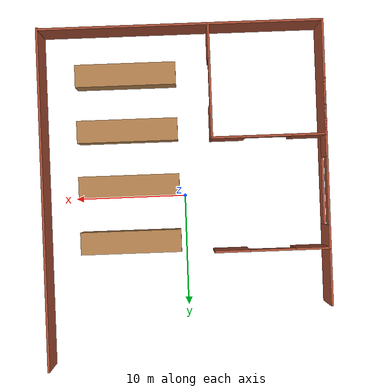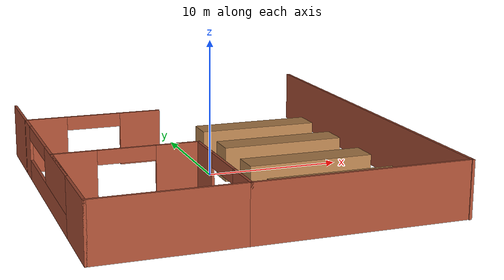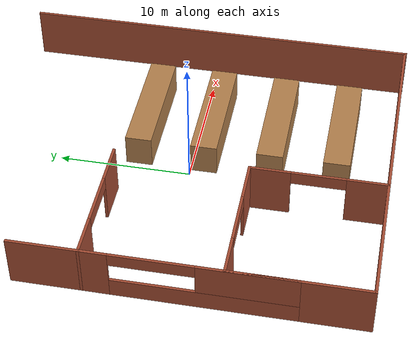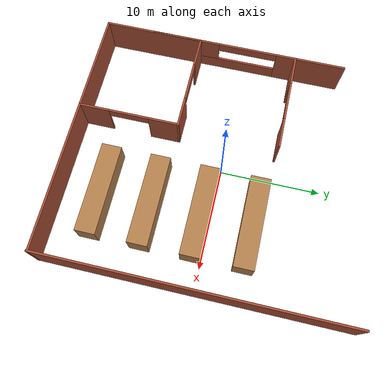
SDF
<sdf version="1.6">
 <model name="MyWareHouse">
  <link name="Wall_12">
   <pose>-7.5 -4.9665 0 0 -0 3.14159</pose>
   <visual name="Wall_12_Visual_0">
    <pose>-3.55 0 2 0 -0 0</pose>
    <geometry><box><size>3.1 0.2 4</size></box></geometry>
    <material>
     <script><uri>file://media/materials/scripts/gazebo.material</uri><name>Gazebo/Bricks</name></script>
     <ambient>1 1 1 1</ambient>
     <shader type="pixel"/>
    </material>
    <meta><layer>0</layer></meta>
   </visual>
   <visual name="Wall_12_Visual_1">
    <pose>3.55 0 2 0 -0 0</pose>
    <geometry><box><size>3.1 0.2 4</size></box></geometry>
    <material>
     <script><uri>file://media/materials/scripts/gazebo.material</uri><name>Gazebo/Bricks</name></script>
     <ambient>1 1 1 1</ambient>
     <shader type="pixel"/>
    </material>
    <meta><layer>0</layer></meta>
   </visual>
   <visual name="Wall_12_Visual_2">
    <pose>0 0 3.5 0 -0 0</pose>
    <geometry><box><size>4 0.2 1</size></box></geometry>
    <material>
     <script><uri>file://media/materials/scripts/gazebo.material</uri><name>Gazebo/Bricks</name></script>
     <ambient>1 1 1 1</ambient>
     <shader type="pixel"/>
    </material>
    <meta><layer>0</layer></meta>
   </visual>
   <collision name="Wall_12_Collision_0">
    <pose>-3.55 0 2 0 -0 0</pose>
    <geometry><box><size>3.1 0.2 4</size></box></geometry>
    <surface>
     <friction>
      <ode><mu>1</mu><mu2>1</mu2><fdir1>0 0 0</fdir1><slip1>0</slip1><slip2>0</slip2></ode>
      <torsional>
       <coefficient>1</coefficient>
       <patch_radius>0</patch_radius>
       <surface_radius>0</surface_radius>
       <use_patch_radius>1</use_patch_radius>
       <ode><slip>0</slip></ode>
      </torsional>
     </friction>
     <bounce><restitution_coefficient>0</restitution_coefficient><threshold>1e+06</threshold></bounce>
     <contact>
      <collide_without_contact>0</collide_without_contact>
      <collide_without_contact_bitmask>1</collide_without_contact_bitmask>
      <collide_bitmask>1</collide_bitmask>
      <ode>
       <soft_cfm>0</soft_cfm>
       <soft_erp>0.2</soft_erp>
       <kp>1e+13</kp>
       <kd>1</kd>
       <max_vel>0.01</max_vel>
       <min_depth>0</min_depth>
      </ode>
      <bullet>
       <split_impulse>1</split_impulse>
       <split_impulse_penetration_threshold>-0.01</split_impulse_penetration_threshold>
       <soft_cfm>0</soft_cfm>
       <soft_erp>0.2</soft_erp>
       <kp>1e+13</kp>
       <kd>1</kd>
      </bullet>
     </contact>
    </surface>
   </collision>
   <collision name="Wall_12_Collision_1">
    <pose>3.55 0 2 0 -0 0</pose>
    <geometry><box><size>3.1 0.2 4</size></box></geometry>
    <surface>
     <friction>
      <ode><mu>1</mu><mu2>1</mu2><fdir1>0 0 0</fdir1><slip1>0</slip1><slip2>0</slip2></ode>
      <torsional>
       <coefficient>1</coefficient>
       <patch_radius>0</patch_radius>
       <surface_radius>0</surface_radius>
       <use_patch_radius>1</use_patch_radius>
       <ode><slip>0</slip></ode>
      </torsional>
     </friction>
     <bounce><restitution_coefficient>0</restitution_coefficient><threshold>1e+06</threshold></bounce>
     <contact>
      <collide_without_contact>0</collide_without_contact>
      <collide_without_contact_bitmask>1</collide_without_contact_bitmask>
      <collide_bitmask>1</collide_bitmask>
      <ode>
       <soft_cfm>0</soft_cfm>
       <soft_erp>0.2</soft_erp>
       <kp>1e+13</kp>
       <kd>1</kd>
       <max_vel>0.01</max_vel>
       <min_depth>0</min_depth>
      </ode>
      <bullet>
       <split_impulse>1</split_impulse>
       <split_impulse_penetration_threshold>-0.01</split_impulse_penetration_threshold>
       <soft_cfm>0</soft_cfm>
       <soft_erp>0.2</soft_erp>
       <kp>1e+13</kp>
       <kd>1</kd>
      </bullet>
     </contact>
    </surface>
   </collision>
   <collision name="Wall_12_Collision_2">
    <pose>0 0 3.5 0 -0 0</pose>
    <geometry><box><size>4 0.2 1</size></box></geometry>
    <surface>
     <friction>
      <ode><mu>1</mu><mu2>1</mu2><fdir1>0 0 0</fdir1><slip1>0</slip1><slip2>0</slip2></ode>
      <torsional>
       <coefficient>1</coefficient>
       <patch_radius>0</patch_radius>
       <surface_radius>0</surface_radius>
       <use_patch_radius>1</use_patch_radius>
       <ode><slip>0</slip></ode>
      </torsional>
     </friction>
     <bounce><restitution_coefficient>0</restitution_coefficient><threshold>1e+06</threshold></bounce>
     <contact>
      <collide_without_contact>0</collide_without_contact>
      <collide_without_contact_bitmask>1</collide_without_contact_bitmask>
      <collide_bitmask>1</collide_bitmask>
      <ode>
       <soft_cfm>0</soft_cfm>
       <soft_erp>0.2</soft_erp>
       <kp>1e+13</kp>
       <kd>1</kd>
       <max_vel>0.01</max_vel>
       <min_depth>0</min_depth>
      </ode>
      <bullet>
       <split_impulse>1</split_impulse>
       <split_impulse_penetration_threshold>-0.01</split_impulse_penetration_threshold>
       <soft_cfm>0</soft_cfm>
       <soft_erp>0.2</soft_erp>
       <kp>1e+13</kp>
       <kd>1</kd>
      </bullet>
     </contact>
    </surface>
   </collision>
  </link>
  <link name="Wall_13">
   <pose>-12.5 -9.9665 0 0 0 -1.5708</pose>
   <visual name="Wall_13_Visual">
    <pose>0 0 2 0 -0 0</pose>
    <geometry><box><size>10.2 0.2 4</size></box></geometry>
    <material>
     <script><uri>file://media/materials/scripts/gazebo.material</uri><name>Gazebo/Bricks</name></script>
     <ambient>1 1 1 1</ambient>
     <shader type="pixel"/>
    </material>
    <meta><layer>0</layer></meta>
   </visual>
   <collision name="Wall_13_Collision">
    <pose>0 0 2 0 -0 0</pose>
    <geometry><box><size>10.2 0.2 4</size></box></geometry>
    <surface>
     <friction>
      <ode><mu>1</mu><mu2>1</mu2><fdir1>0 0 0</fdir1><slip1>0</slip1><slip2>0</slip2></ode>
      <torsional>
       <coefficient>1</coefficient>
       <patch_radius>0</patch_radius>
       <surface_radius>0</surface_radius>
       <use_patch_radius>1</use_patch_radius>
       <ode><slip>0</slip></ode>
      </torsional>
     </friction>
     <bounce><restitution_coefficient>0</restitution_coefficient><threshold>1e+06</threshold></bounce>
     <contact>
      <collide_without_contact>0</collide_without_contact>
      <collide_without_contact_bitmask>1</collide_without_contact_bitmask>
      <collide_bitmask>1</collide_bitmask>
      <ode>
       <soft_cfm>0</soft_cfm>
       <soft_erp>0.2</soft_erp>
       <kp>1e+13</kp>
       <kd>1</kd>
       <max_vel>0.01</max_vel>
       <min_depth>0</min_depth>
      </ode>
      <bullet>
       <split_impulse>1</split_impulse>
       <split_impulse_penetration_threshold>-0.01</split_impulse_penetration_threshold>
       <soft_cfm>0</soft_cfm>
       <soft_erp>0.2</soft_erp>
       <kp>1e+13</kp>
       <kd>1</kd>
      </bullet>
     </contact>
    </surface>
   </collision>
  </link>
  <link name="Wall_14">
   <pose>-7.5 -14.9665 0 0 -0 0</pose>
   <visual name="Wall_14_Visual">
    <pose>0 0 2 0 -0 0</pose>
    <geometry><box><size>10.2 0.2 4</size></box></geometry>
    <material>
     <script><uri>file://media/materials/scripts/gazebo.material</uri><name>Gazebo/Bricks</name></script>
     <ambient>1 1 1 1</ambient>
     <shader type="pixel"/>
    </material>
    <meta><layer>0</layer></meta>
   </visual>
   <collision name="Wall_14_Collision">
    <pose>0 0 2 0 -0 0</pose>
    <geometry><box><size>10.2 0.2 4</size></box></geometry>
    <surface>
     <friction>
      <ode><mu>1</mu><mu2>1</mu2><fdir1>0 0 0</fdir1><slip1>0</slip1><slip2>0</slip2></ode>
      <torsional>
       <coefficient>1</coefficient>
       <patch_radius>0</patch_radius>
       <surface_radius>0</surface_radius>
       <use_patch_radius>1</use_patch_radius>
       <ode><slip>0</slip></ode>
      </torsional>
     </friction>
     <bounce><restitution_coefficient>0</restitution_coefficient><threshold>1e+06</threshold></bounce>
     <contact>
      <collide_without_contact>0</collide_without_contact>
      <collide_without_contact_bitmask>1</collide_without_contact_bitmask>
      <collide_bitmask>1</collide_bitmask>
      <ode>
       <soft_cfm>0</soft_cfm>
       <soft_erp>0.2</soft_erp>
       <kp>1e+13</kp>
       <kd>1</kd>
       <max_vel>0.01</max_vel>
       <min_depth>0</min_depth>
      </ode>
      <bullet>
       <split_impulse>1</split_impulse>
       <split_impulse_penetration_threshold>-0.01</split_impulse_penetration_threshold>
       <soft_cfm>0</soft_cfm>
       <soft_erp>0.2</soft_erp>
       <kp>1e+13</kp>
       <kd>1</kd>
      </bullet>
     </contact>
    </surface>
   </collision>
  </link>
  <link name="Wall_15">
   <pose>-2.5 -9.9665 0 0 -0 1.5708</pose>
   <visual name="Wall_15_Visual_1">
    <pose>3.55 0 2 0 -0 0</pose>
    <geometry><box><size>3.1 0.2 4</size></box></geometry>
    <material>
     <script><uri>file://media/materials/scripts/gazebo.material</uri><name>Gazebo/Bricks</name></script>
     <ambient>1 1 1 1</ambient>
     <shader type="pixel"/>
    </material>
    <meta><layer>0</layer></meta>
   </visual>
   <visual name="Wall_15_Visual_0">
    <pose>-3.55 0 2 0 -0 0</pose>
    <geometry><box><size>3.1 0.2 4</size></box></geometry>
    <material>
     <script><uri>file://media/materials/scripts/gazebo.material</uri><name>Gazebo/Bricks</name></script>
     <ambient>1 1 1 1</ambient>
     <shader type="pixel"/>
    </material>
    <meta><layer>0</layer></meta>
   </visual>
   <visual name="Wall_15_Visual_2">
    <pose>0 0 3.5 0 -0 0</pose>
    <geometry><box><size>4 0.2 1</size></box></geometry>
    <material>
     <script><uri>file://media/materials/scripts/gazebo.material</uri><name>Gazebo/Bricks</name></script>
     <ambient>1 1 1 1</ambient>
     <shader type="pixel"/>
    </material>
    <meta><layer>0</layer></meta>
   </visual>
   <collision name="Wall_15_Collision_0">
    <pose>-3.55 0 2 0 -0 0</pose>
    <geometry><box><size>3.1 0.2 4</size></box></geometry>
    <surface>
     <friction>
      <ode><mu>1</mu><mu2>1</mu2><fdir1>0 0 0</fdir1><slip1>0</slip1><slip2>0</slip2></ode>
      <torsional>
       <coefficient>1</coefficient>
       <patch_radius>0</patch_radius>
       <surface_radius>0</surface_radius>
       <use_patch_radius>1</use_patch_radius>
       <ode><slip>0</slip></ode>
      </torsional>
     </friction>
     <bounce><restitution_coefficient>0</restitution_coefficient><threshold>1e+06</threshold></bounce>
     <contact>
      <collide_without_contact>0</collide_without_contact>
      <collide_without_contact_bitmask>1</collide_without_contact_bitmask>
      <collide_bitmask>1</collide_bitmask>
      <ode>
       <soft_cfm>0</soft_cfm>
       <soft_erp>0.2</soft_erp>
       <kp>1e+13</kp>
       <kd>1</kd>
       <max_vel>0.01</max_vel>
       <min_depth>0</min_depth>
      </ode>
      <bullet>
       <split_impulse>1</split_impulse>
       <split_impulse_penetration_threshold>-0.01</split_impulse_penetration_threshold>
       <soft_cfm>0</soft_cfm>
       <soft_erp>0.2</soft_erp>
       <kp>1e+13</kp>
       <kd>1</kd>
      </bullet>
     </contact>
    </surface>
   </collision>
   <collision name="Wall_15_Collision_1">
    <pose>3.55 0 2 0 -0 0</pose>
    <geometry><box><size>3.1 0.2 4</size></box></geometry>
    <surface>
     <friction>
      <ode><mu>1</mu><mu2>1</mu2><fdir1>0 0 0</fdir1><slip1>0</slip1><slip2>0</slip2></ode>
      <torsional>
       <coefficient>1</coefficient>
       <patch_radius>0</patch_radius>
       <surface_radius>0</surface_radius>
       <use_patch_radius>1</use_patch_radius>
       <ode><slip>0</slip></ode>
      </torsional>
     </friction>
     <bounce><restitution_coefficient>0</restitution_coefficient><threshold>1e+06</threshold></bounce>
     <contact>
      <collide_without_contact>0</collide_without_contact>
      <collide_without_contact_bitmask>1</collide_without_contact_bitmask>
      <collide_bitmask>1</collide_bitmask>
      <ode>
       <soft_cfm>0</soft_cfm>
       <soft_erp>0.2</soft_erp>
       <kp>1e+13</kp>
       <kd>1</kd>
       <max_vel>0.01</max_vel>
       <min_depth>0</min_depth>
      </ode>
      <bullet>
       <split_impulse>1</split_impulse>
       <split_impulse_penetration_threshold>-0.01</split_impulse_penetration_threshold>
       <soft_cfm>0</soft_cfm>
       <soft_erp>0.2</soft_erp>
       <kp>1e+13</kp>
       <kd>1</kd>
      </bullet>
     </contact>
    </surface>
   </collision>
   <collision name="Wall_15_Collision_2">
    <pose>0 0 3.5 0 -0 0</pose>
    <geometry><box><size>4 0.2 1</size></box></geometry>
    <surface>
     <friction>
      <ode><mu>1</mu><mu2>1</mu2><fdir1>0 0 0</fdir1><slip1>0</slip1><slip2>0</slip2></ode>
      <torsional>
       <coefficient>1</coefficient>
       <patch_radius>0</patch_radius>
       <surface_radius>0</surface_radius>
       <use_patch_radius>1</use_patch_radius>
       <ode><slip>0</slip></ode>
      </torsional>
     </friction>
     <bounce><restitution_coefficient>0</restitution_coefficient><threshold>1e+06</threshold></bounce>
     <contact>
      <collide_without_contact>0</collide_without_contact>
      <collide_without_contact_bitmask>1</collide_without_contact_bitmask>
      <collide_bitmask>1</collide_bitmask>
      <ode>
       <soft_cfm>0</soft_cfm>
       <soft_erp>0.2</soft_erp>
       <kp>1e+13</kp>
       <kd>1</kd>
       <max_vel>0.01</max_vel>
       <min_depth>0</min_depth>
      </ode>
      <bullet>
       <split_impulse>1</split_impulse>
       <split_impulse_penetration_threshold>-0.01</split_impulse_penetration_threshold>
       <soft_cfm>0</soft_cfm>
       <soft_erp>0.2</soft_erp>
       <kp>1e+13</kp>
       <kd>1</kd>
      </bullet>
     </contact>
    </surface>
   </collision>
  </link>
  <link name="Wall_17">
   <pose>-12.5 0.033501 0 0 0 -1.5708</pose>
   <visual name="Wall_17_Visual_0">
    <pose>-6.55 0 2 0 -0 0</pose>
    <geometry><box><size>7.1 0.2 4</size></box></geometry>
    <material>
     <script><uri>file://media/materials/scripts/gazebo.material</uri><name>Gazebo/Bricks</name></script>
     <ambient>1 1 1 1</ambient>
     <shader type="pixel"/>
    </material>
    <meta><layer>0</layer></meta>
   </visual>
   <visual name="Wall_17_Visual_1">
    <pose>3.55 0 0.75 0 -0 0</pose>
    <geometry><box><size>13.1 0.2 1.5</size></box></geometry>
    <material>
     <script><uri>file://media/materials/scripts/gazebo.material</uri><name>Gazebo/Bricks</name></script>
     <ambient>1 1 1 1</ambient>
     <shader type="pixel"/>
    </material>
    <meta><layer>0</layer></meta>
   </visual>
   <visual name="Wall_17_Visual_2">
    <pose>6.55 0 2.75 0 -0 0</pose>
    <geometry><box><size>7.1 0.2 2.5</size></box></geometry>
    <material>
     <script><uri>file://media/materials/scripts/gazebo.material</uri><name>Gazebo/Bricks</name></script>
     <ambient>1 1 1 1</ambient>
     <shader type="pixel"/>
    </material>
    <meta><layer>0</layer></meta>
   </visual>
   <visual name="Wall_17_Visual_3">
    <pose>0 0 3.5 0 -0 0</pose>
    <geometry><box><size>6 0.2 1</size></box></geometry>
    <material>
     <script><uri>file://media/materials/scripts/gazebo.material</uri><name>Gazebo/Bricks</name></script>
     <ambient>1 1 1 1</ambient>
     <shader type="pixel"/>
    </material>
    <meta><layer>0</layer></meta>
   </visual>
   <collision name="Wall_17_Collision_2">
    <pose>6.55 0 2.75 0 -0 0</pose>
    <geometry><box><size>7.1 0.2 2.5</size></box></geometry>
    <surface>
     <friction>
      <ode><mu>1</mu><mu2>1</mu2><fdir1>0 0 0</fdir1><slip1>0</slip1><slip2>0</slip2></ode>
      <torsional>
       <coefficient>1</coefficient>
       <patch_radius>0</patch_radius>
       <surface_radius>0</surface_radius>
       <use_patch_radius>1</use_patch_radius>
       <ode><slip>0</slip></ode>
      </torsional>
     </friction>
     <bounce><restitution_coefficient>0</restitution_coefficient><threshold>1e+06</threshold></bounce>
     <contact>
      <collide_without_contact>0</collide_without_contact>
      <collide_without_contact_bitmask>1</collide_without_contact_bitmask>
      <collide_bitmask>1</collide_bitmask>
      <ode>
       <soft_cfm>0</soft_cfm>
       <soft_erp>0.2</soft_erp>
       <kp>1e+13</kp>
       <kd>1</kd>
       <max_vel>0.01</max_vel>
       <min_depth>0</min_depth>
      </ode>
      <bullet>
       <split_impulse>1</split_impulse>
       <split_impulse_penetration_threshold>-0.01</split_impulse_penetration_threshold>
       <soft_cfm>0</soft_cfm>
       <soft_erp>0.2</soft_erp>
       <kp>1e+13</kp>
       <kd>1</kd>
      </bullet>
     </contact>
    </surface>
   </collision>
   <collision name="Wall_17_Collision_0">
    <pose>-6.55 0 2 0 -0 0</pose>
    <geometry><box><size>7.1 0.2 4</size></box></geometry>
    <surface>
     <friction>
      <ode><mu>1</mu><mu2>1</mu2><fdir1>0 0 0</fdir1><slip1>0</slip1><slip2>0</slip2></ode>
      <torsional>
       <coefficient>1</coefficient>
       <patch_radius>0</patch_radius>
       <surface_radius>0</surface_radius>
       <use_patch_radius>1</use_patch_radius>
       <ode><slip>0</slip></ode>
      </torsional>
     </friction>
     <bounce><restitution_coefficient>0</restitution_coefficient><threshold>1e+06</threshold></bounce>
     <contact>
      <collide_without_contact>0</collide_without_contact>
      <collide_without_contact_bitmask>1</collide_without_contact_bitmask>
      <collide_bitmask>1</collide_bitmask>
      <ode>
       <soft_cfm>0</soft_cfm>
       <soft_erp>0.2</soft_erp>
       <kp>1e+13</kp>
       <kd>1</kd>
       <max_vel>0.01</max_vel>
       <min_depth>0</min_depth>
      </ode>
      <bullet>
       <split_impulse>1</split_impulse>
       <split_impulse_penetration_threshold>-0.01</split_impulse_penetration_threshold>
       <soft_cfm>0</soft_cfm>
       <soft_erp>0.2</soft_erp>
       <kp>1e+13</kp>
       <kd>1</kd>
      </bullet>
     </contact>
    </surface>
   </collision>
   <collision name="Wall_17_Collision_1">
    <pose>3.55 0 0.75 0 -0 0</pose>
    <geometry><box><size>13.1 0.2 1.5</size></box></geometry>
    <surface>
     <friction>
      <ode><mu>1</mu><mu2>1</mu2><fdir1>0 0 0</fdir1><slip1>0</slip1><slip2>0</slip2></ode>
      <torsional>
       <coefficient>1</coefficient>
       <patch_radius>0</patch_radius>
       <surface_radius>0</surface_radius>
       <use_patch_radius>1</use_patch_radius>
       <ode><slip>0</slip></ode>
      </torsional>
     </friction>
     <bounce><restitution_coefficient>0</restitution_coefficient><threshold>1e+06</threshold></bounce>
     <contact>
      <collide_without_contact>0</collide_without_contact>
      <collide_without_contact_bitmask>1</collide_without_contact_bitmask>
      <collide_bitmask>1</collide_bitmask>
      <ode>
       <soft_cfm>0</soft_cfm>
       <soft_erp>0.2</soft_erp>
       <kp>1e+13</kp>
       <kd>1</kd>
       <max_vel>0.01</max_vel>
       <min_depth>0</min_depth>
      </ode>
      <bullet>
       <split_impulse>1</split_impulse>
       <split_impulse_penetration_threshold>-0.01</split_impulse_penetration_threshold>
       <soft_cfm>0</soft_cfm>
       <soft_erp>0.2</soft_erp>
       <kp>1e+13</kp>
       <kd>1</kd>
      </bullet>
     </contact>
    </surface>
   </collision>
   <collision name="Wall_17_Collision_3">
    <pose>0 0 3.5 0 -0 0</pose>
    <geometry><box><size>6 0.2 1</size></box></geometry>
    <surface>
     <friction>
      <ode><mu>1</mu><mu2>1</mu2><fdir1>0 0 0</fdir1><slip1>0</slip1><slip2>0</slip2></ode>
      <torsional>
       <coefficient>1</coefficient>
       <patch_radius>0</patch_radius>
       <surface_radius>0</surface_radius>
       <use_patch_radius>1</use_patch_radius>
       <ode><slip>0</slip></ode>
      </torsional>
     </friction>
     <bounce><restitution_coefficient>0</restitution_coefficient><threshold>1e+06</threshold></bounce>
     <contact>
      <collide_without_contact>0</collide_without_contact>
      <collide_without_contact_bitmask>1</collide_without_contact_bitmask>
      <collide_bitmask>1</collide_bitmask>
      <ode>
       <soft_cfm>0</soft_cfm>
       <soft_erp>0.2</soft_erp>
       <kp>1e+13</kp>
       <kd>1</kd>
       <max_vel>0.01</max_vel>
       <min_depth>0</min_depth>
      </ode>
      <bullet>
       <split_impulse>1</split_impulse>
       <split_impulse_penetration_threshold>-0.01</split_impulse_penetration_threshold>
       <soft_cfm>0</soft_cfm>
       <soft_erp>0.2</soft_erp>
       <kp>1e+13</kp>
       <kd>1</kd>
      </bullet>
     </contact>
    </surface>
   </collision>
  </link>
  <link name="Wall_21">
   <pose>12.5 -0.033499 0 0 0 -1.5708</pose>
   <visual name="Wall_21_Visual">
    <pose>0 0 2 0 -0 0</pose>
    <geometry><box><size>30.2 0.2 4</size></box></geometry>
    <material>
     <script><uri>file://media/materials/scripts/gazebo.material</uri><name>Gazebo/Bricks</name></script>
     <ambient>1 1 1 1</ambient>
     <shader type="pixel"/>
    </material>
    <meta><layer>0</layer></meta>
   </visual>
   <collision name="Wall_21_Collision">
    <pose>0 0 2 0 -0 0</pose>
    <geometry><box><size>30.2 0.2 4</size></box></geometry>
    <surface>
     <friction>
      <ode><mu>1</mu><mu2>1</mu2><fdir1>0 0 0</fdir1><slip1>0</slip1><slip2>0</slip2></ode>
      <torsional>
       <coefficient>1</coefficient>
       <patch_radius>0</patch_radius>
       <surface_radius>0</surface_radius>
       <use_patch_radius>1</use_patch_radius>
       <ode><slip>0</slip></ode>
      </torsional>
     </friction>
     <bounce><restitution_coefficient>0</restitution_coefficient><threshold>1e+06</threshold></bounce>
     <contact>
      <collide_without_contact>0</collide_without_contact>
      <collide_without_contact_bitmask>1</collide_without_contact_bitmask>
      <collide_bitmask>1</collide_bitmask>
      <ode>
       <soft_cfm>0</soft_cfm>
       <soft_erp>0.2</soft_erp>
       <kp>1e+13</kp>
       <kd>1</kd>
       <max_vel>0.01</max_vel>
       <min_depth>0</min_depth>
      </ode>
      <bullet>
       <split_impulse>1</split_impulse>
       <split_impulse_penetration_threshold>-0.01</split_impulse_penetration_threshold>
       <soft_cfm>0</soft_cfm>
       <soft_erp>0.2</soft_erp>
       <kp>1e+13</kp>
       <kd>1</kd>
      </bullet>
     </contact>
    </surface>
   </collision>
  </link>
  <link name="Wall_23">
   <pose>5 -14.9665 0 0 -0 0</pose>
   <visual name="Wall_23_Visual">
    <pose>0 0 2 0 -0 0</pose>
    <geometry><box><size>15.2 0.2 4</size></box></geometry>
    <material>
     <script><uri>file://media/materials/scripts/gazebo.material</uri><name>Gazebo/Bricks</name></script>
     <ambient>1 1 1 1</ambient>
     <shader type="pixel"/>
    </material>
    <meta><layer>0</layer></meta>
   </visual>
   <collision name="Wall_23_Collision">
    <pose>0 0 2 0 -0 0</pose>
    <geometry><box><size>15.2 0.2 4</size></box></geometry>
    <surface>
     <friction>
      <ode><mu>1</mu><mu2>1</mu2><fdir1>0 0 0</fdir1><slip1>0</slip1><slip2>0</slip2></ode>
      <torsional>
       <coefficient>1</coefficient>
       <patch_radius>0</patch_radius>
       <surface_radius>0</surface_radius>
       <use_patch_radius>1</use_patch_radius>
       <ode><slip>0</slip></ode>
      </torsional>
     </friction>
     <bounce><restitution_coefficient>0</restitution_coefficient><threshold>1e+06</threshold></bounce>
     <contact>
      <collide_without_contact>0</collide_without_contact>
      <collide_without_contact_bitmask>1</collide_without_contact_bitmask>
      <collide_bitmask>1</collide_bitmask>
      <ode>
       <soft_cfm>0</soft_cfm>
       <soft_erp>0.2</soft_erp>
       <kp>1e+13</kp>
       <kd>1</kd>
       <max_vel>0.01</max_vel>
       <min_depth>0</min_depth>
      </ode>
      <bullet>
       <split_impulse>1</split_impulse>
       <split_impulse_penetration_threshold>-0.01</split_impulse_penetration_threshold>
       <soft_cfm>0</soft_cfm>
       <soft_erp>0.2</soft_erp>
       <kp>1e+13</kp>
       <kd>1</kd>
      </bullet>
     </contact>
    </surface>
   </collision>
  </link>
  <link name="Wall_5">
   <pose>-7.5 5.0335 0 0 -0 3.14159</pose>
   <visual name="Wall_5_Visual_1">
    <pose>3.55 0 2 0 -0 0</pose>
    <geometry><box><size>3.1 0.2 4</size></box></geometry>
    <material>
     <script><uri>file://media/materials/scripts/gazebo.material</uri><name>Gazebo/Bricks</name></script>
     <ambient>1 1 1 1</ambient>
     <shader type="pixel"/>
    </material>
    <meta><layer>0</layer></meta>
   </visual>
   <visual name="Wall_5_Visual_0">
    <pose>-3.55 0 2 0 -0 0</pose>
    <geometry><box><size>3.1 0.2 4</size></box></geometry>
    <material>
     <script><uri>file://media/materials/scripts/gazebo.material</uri><name>Gazebo/Bricks</name></script>
     <ambient>1 1 1 1</ambient>
     <shader type="pixel"/>
    </material>
    <meta><layer>0</layer></meta>
   </visual>
   <visual name="Wall_5_Visual_2">
    <pose>0 0 3.5 0 -0 0</pose>
    <geometry><box><size>4 0.2 1</size></box></geometry>
    <material>
     <script><uri>file://media/materials/scripts/gazebo.material</uri><name>Gazebo/Bricks</name></script>
     <ambient>1 1 1 1</ambient>
     <shader type="pixel"/>
    </material>
    <meta><layer>0</layer></meta>
   </visual>
   <collision name="Wall_5_Collision_0">
    <pose>-3.55 0 2 0 -0 0</pose>
    <geometry><box><size>3.1 0.2 4</size></box></geometry>
    <surface>
     <friction>
      <ode><mu>1</mu><mu2>1</mu2><fdir1>0 0 0</fdir1><slip1>0</slip1><slip2>0</slip2></ode>
      <torsional>
       <coefficient>1</coefficient>
       <patch_radius>0</patch_radius>
       <surface_radius>0</surface_radius>
       <use_patch_radius>1</use_patch_radius>
       <ode><slip>0</slip></ode>
      </torsional>
     </friction>
     <bounce><restitution_coefficient>0</restitution_coefficient><threshold>1e+06</threshold></bounce>
     <contact>
      <collide_without_contact>0</collide_without_contact>
      <collide_without_contact_bitmask>1</collide_without_contact_bitmask>
      <collide_bitmask>1</collide_bitmask>
      <ode>
       <soft_cfm>0</soft_cfm>
       <soft_erp>0.2</soft_erp>
       <kp>1e+13</kp>
       <kd>1</kd>
       <max_vel>0.01</max_vel>
       <min_depth>0</min_depth>
      </ode>
      <bullet>
       <split_impulse>1</split_impulse>
       <split_impulse_penetration_threshold>-0.01</split_impulse_penetration_threshold>
       <soft_cfm>0</soft_cfm>
       <soft_erp>0.2</soft_erp>
       <kp>1e+13</kp>
       <kd>1</kd>
      </bullet>
     </contact>
    </surface>
   </collision>
   <collision name="Wall_5_Collision_2">
    <pose>0 0 3.5 0 -0 0</pose>
    <geometry><box><size>4 0.2 1</size></box></geometry>
    <surface>
     <friction>
      <ode><mu>1</mu><mu2>1</mu2><fdir1>0 0 0</fdir1><slip1>0</slip1><slip2>0</slip2></ode>
      <torsional>
       <coefficient>1</coefficient>
       <patch_radius>0</patch_radius>
       <surface_radius>0</surface_radius>
       <use_patch_radius>1</use_patch_radius>
       <ode><slip>0</slip></ode>
      </torsional>
     </friction>
     <bounce><restitution_coefficient>0</restitution_coefficient><threshold>1e+06</threshold></bounce>
     <contact>
      <collide_without_contact>0</collide_without_contact>
      <collide_without_contact_bitmask>1</collide_without_contact_bitmask>
      <collide_bitmask>1</collide_bitmask>
      <ode>
       <soft_cfm>0</soft_cfm>
       <soft_erp>0.2</soft_erp>
       <kp>1e+13</kp>
       <kd>1</kd>
       <max_vel>0.01</max_vel>
       <min_depth>0</min_depth>
      </ode>
      <bullet>
       <split_impulse>1</split_impulse>
       <split_impulse_penetration_threshold>-0.01</split_impulse_penetration_threshold>
       <soft_cfm>0</soft_cfm>
       <soft_erp>0.2</soft_erp>
       <kp>1e+13</kp>
       <kd>1</kd>
      </bullet>
     </contact>
    </surface>
   </collision>
   <collision name="Wall_5_Collision_1">
    <pose>3.55 0 2 0 -0 0</pose>
    <geometry><box><size>3.1 0.2 4</size></box></geometry>
    <surface>
     <friction>
      <ode><mu>1</mu><mu2>1</mu2><fdir1>0 0 0</fdir1><slip1>0</slip1><slip2>0</slip2></ode>
      <torsional>
       <coefficient>1</coefficient>
       <patch_radius>0</patch_radius>
       <surface_radius>0</surface_radius>
       <use_patch_radius>1</use_patch_radius>
       <ode><slip>0</slip></ode>
      </torsional>
     </friction>
     <bounce><restitution_coefficient>0</restitution_coefficient><threshold>1e+06</threshold></bounce>
     <contact>
      <collide_without_contact>0</collide_without_contact>
      <collide_without_contact_bitmask>1</collide_without_contact_bitmask>
      <collide_bitmask>1</collide_bitmask>
      <ode>
       <soft_cfm>0</soft_cfm>
       <soft_erp>0.2</soft_erp>
       <kp>1e+13</kp>
       <kd>1</kd>
       <max_vel>0.01</max_vel>
       <min_depth>0</min_depth>
      </ode>
      <bullet>
       <split_impulse>1</split_impulse>
       <split_impulse_penetration_threshold>-0.01</split_impulse_penetration_threshold>
       <soft_cfm>0</soft_cfm>
       <soft_erp>0.2</soft_erp>
       <kp>1e+13</kp>
       <kd>1</kd>
      </bullet>
     </contact>
    </surface>
   </collision>
  </link>
  <link name="link_0_clone">
   <inertial>
    <mass>1e+08</mass>
    <inertia>
     <ixx>1.66667e+07</ixx>
     <ixy>0</ixy>
     <ixz>0</ixz>
     <iyy>1.66667e+07</iyy>
     <iyz>0</iyz>
     <izz>1.66667e+07</izz>
    </inertia>
   </inertial>
   <pose>5 4 1.25 0 -0 0</pose>
   <visual name="visual">
    <geometry><box><size>9 2 2.5</size></box></geometry>
    <material>
     <lighting>1</lighting>
     <script><uri>file://media/materials/scripts/gazebo.material</uri><name>Gazebo/Wood</name></script>
     <shader type="pixel"><normal_map>__default__</normal_map></shader>
     <ambient>0.3 0.3 0.3 1</ambient>
     <diffuse>0.7 0.7 0.7 1</diffuse>
     <specular>0.01 0.01 0.01 1</specular>
     <emissive>0 0 0 1</emissive>
    </material>
   </visual>
   <collision name="collision">
    <geometry><box><size>9 2 2.5</size></box></geometry>
    <surface>
     <friction>
      <ode><mu>1</mu><mu2>1</mu2><fdir1>0 0 0</fdir1><slip1>0</slip1><slip2>0</slip2></ode>
      <torsional>
       <coefficient>1</coefficient>
       <patch_radius>0</patch_radius>
       <surface_radius>0</surface_radius>
       <use_patch_radius>1</use_patch_radius>
       <ode><slip>0</slip></ode>
      </torsional>
     </friction>
     <bounce><restitution_coefficient>0</restitution_coefficient><threshold>1e+06</threshold></bounce>
     <contact>
      <collide_without_contact>0</collide_without_contact>
      <collide_without_contact_bitmask>1</collide_without_contact_bitmask>
      <collide_bitmask>1</collide_bitmask>
      <ode>
       <soft_cfm>0</soft_cfm>
       <soft_erp>0.2</soft_erp>
       <kp>1e+13</kp>
       <kd>1</kd>
       <max_vel>0.01</max_vel>
       <min_depth>0</min_depth>
      </ode>
      <bullet>
       <split_impulse>1</split_impulse>
       <split_impulse_penetration_threshold>-0.01</split_impulse_penetration_threshold>
       <soft_cfm>0</soft_cfm>
       <soft_erp>0.2</soft_erp>
       <kp>1e+13</kp>
       <kd>1</kd>
      </bullet>
     </contact>
    </surface>
   </collision>
  </link>
  <link name="link_0_clone_0">
   <inertial>
    <mass>1e+08</mass>
    <inertia>
     <ixx>1.66667e+07</ixx>
     <ixy>0</ixy>
     <ixz>0</ixz>
     <iyy>1.66667e+07</iyy>
     <iyz>0</iyz>
     <izz>1.66667e+07</izz>
    </inertia>
   </inertial>
   <pose>5 -1 1.25 0 -0 0</pose>
   <visual name="visual">
    <geometry><box><size>9 2 2.5</size></box></geometry>
    <material>
     <lighting>1</lighting>
     <script><uri>file://media/materials/scripts/gazebo.material</uri><name>Gazebo/Wood</name></script>
     <shader type="pixel"><normal_map>__default__</normal_map></shader>
     <ambient>0.3 0.3 0.3 1</ambient>
     <diffuse>0.7 0.7 0.7 1</diffuse>
     <specular>0.01 0.01 0.01 1</specular>
     <emissive>0 0 0 1</emissive>
    </material>
   </visual>
   <collision name="collision">
    <geometry><box><size>9 2 2.5</size></box></geometry>
    <surface>
     <friction>
      <ode><mu>1</mu><mu2>1</mu2><fdir1>0 0 0</fdir1><slip1>0</slip1><slip2>0</slip2></ode>
      <torsional>
       <coefficient>1</coefficient>
       <patch_radius>0</patch_radius>
       <surface_radius>0</surface_radius>
       <use_patch_radius>1</use_patch_radius>
       <ode><slip>0</slip></ode>
      </torsional>
     </friction>
     <bounce><restitution_coefficient>0</restitution_coefficient><threshold>1e+06</threshold></bounce>
     <contact>
      <collide_without_contact>0</collide_without_contact>
      <collide_without_contact_bitmask>1</collide_without_contact_bitmask>
      <collide_bitmask>1</collide_bitmask>
      <ode>
       <soft_cfm>0</soft_cfm>
       <soft_erp>0.2</soft_erp>
       <kp>1e+13</kp>
       <kd>1</kd>
       <max_vel>0.01</max_vel>
       <min_depth>0</min_depth>
      </ode>
      <bullet>
       <split_impulse>1</split_impulse>
       <split_impulse_penetration_threshold>-0.01</split_impulse_penetration_threshold>
       <soft_cfm>0</soft_cfm>
       <soft_erp>0.2</soft_erp>
       <kp>1e+13</kp>
       <kd>1</kd>
      </bullet>
     </contact>
    </surface>
   </collision>
  </link>
  <link name="link_0_clone_0_clone">
   <inertial>
    <mass>1e+08</mass>
    <inertia>
     <ixx>1.66667e+07</ixx>
     <ixy>0</ixy>
     <ixz>0</ixz>
     <iyy>1.66667e+07</iyy>
     <iyz>0</iyz>
     <izz>1.66667e+07</izz>
    </inertia>
   </inertial>
   <pose>5 -6 1.25 0 -0 0</pose>
   <visual name="visual">
    <geometry><box><size>9 2 2.5</size></box></geometry>
    <material>
     <lighting>1</lighting>
     <script><uri>file://media/materials/scripts/gazebo.material</uri><name>Gazebo/Wood</name></script>
     <shader type="pixel"><normal_map>__default__</normal_map></shader>
     <ambient>0.3 0.3 0.3 1</ambient>
     <diffuse>0.7 0.7 0.7 1</diffuse>
     <specular>0.01 0.01 0.01 1</specular>
     <emissive>0 0 0 1</emissive>
    </material>
   </visual>
   <collision name="collision">
    <geometry><box><size>9 2 2.5</size></box></geometry>
    <surface>
     <friction>
      <ode><mu>1</mu><mu2>1</mu2><fdir1>0 0 0</fdir1><slip1>0</slip1><slip2>0</slip2></ode>
      <torsional>
       <coefficient>1</coefficient>
       <patch_radius>0</patch_radius>
       <surface_radius>0</surface_radius>
       <use_patch_radius>1</use_patch_radius>
       <ode><slip>0</slip></ode>
      </torsional>
     </friction>
     <bounce><restitution_coefficient>0</restitution_coefficient><threshold>1e+06</threshold></bounce>
     <contact>
      <collide_without_contact>0</collide_without_contact>
      <collide_without_contact_bitmask>1</collide_without_contact_bitmask>
      <collide_bitmask>1</collide_bitmask>
      <ode>
       <soft_cfm>0</soft_cfm>
       <soft_erp>0.2</soft_erp>
       <kp>1e+13</kp>
       <kd>1</kd>
       <max_vel>0.01</max_vel>
       <min_depth>0</min_depth>
      </ode>
      <bullet>
       <split_impulse>1</split_impulse>
       <split_impulse_penetration_threshold>-0.01</split_impulse_penetration_threshold>
       <soft_cfm>0</soft_cfm>
       <soft_erp>0.2</soft_erp>
       <kp>1e+13</kp>
       <kd>1</kd>
      </bullet>
     </contact>
    </surface>
   </collision>
  </link>
  <link name="link_0_clone_0_clone_0">
   <inertial>
    <mass>1e+08</mass>
    <inertia>
     <ixx>1.66667e+07</ixx>
     <ixy>0</ixy>
     <ixz>0</ixz>
     <iyy>1.66667e+07</iyy>
     <iyz>0</iyz>
     <izz>1.66667e+07</izz>
    </inertia>
   </inertial>
   <pose>5 -11 1.25 0 -0 0</pose>
   <visual name="visual">
    <geometry><box><size>9 2 2.5</size></box></geometry>
    <material>
     <lighting>1</lighting>
     <script><uri>file://media/materials/scripts/gazebo.material</uri><name>Gazebo/Wood</name></script>
     <shader type="pixel"><normal_map>__default__</normal_map></shader>
     <ambient>0.3 0.3 0.3 1</ambient>
     <diffuse>0.7 0.7 0.7 1</diffuse>
     <specular>0.01 0.01 0.01 1</specular>
     <emissive>0 0 0 1</emissive>
    </material>
   </visual>
   <collision name="collision">
    <geometry><box><size>9 2 2.5</size></box></geometry>
    <surface>
     <friction>
      <ode><mu>1</mu><mu2>1</mu2><fdir1>0 0 0</fdir1><slip1>0</slip1><slip2>0</slip2></ode>
      <torsional>
       <coefficient>1</coefficient>
       <patch_radius>0</patch_radius>
       <surface_radius>0</surface_radius>
       <use_patch_radius>1</use_patch_radius>
       <ode><slip>0</slip></ode>
      </torsional>
     </friction>
     <bounce><restitution_coefficient>0</restitution_coefficient><threshold>1e+06</threshold></bounce>
     <contact>
      <collide_without_contact>0</collide_without_contact>
      <collide_without_contact_bitmask>1</collide_without_contact_bitmask>
      <collide_bitmask>1</collide_bitmask>
      <ode>
       <soft_cfm>0</soft_cfm>
       <soft_erp>0.2</soft_erp>
       <kp>1e+13</kp>
       <kd>1</kd>
       <max_vel>0.01</max_vel>
       <min_depth>0</min_depth>
      </ode>
      <bullet>
       <split_impulse>1</split_impulse>
       <split_impulse_penetration_threshold>-0.01</split_impulse_penetration_threshold>
       <soft_cfm>0</soft_cfm>
       <soft_erp>0.2</soft_erp>
       <kp>1e+13</kp>
       <kd>1</kd>
      </bullet>
     </contact>
    </surface>
   </collision>
  </link>
  <static>1</static>
 </model>
</sdf>
